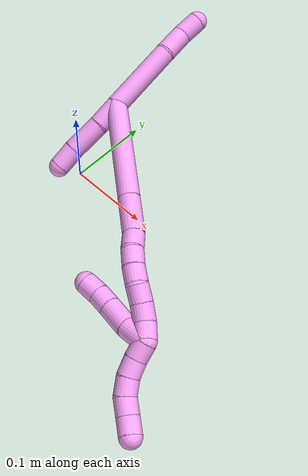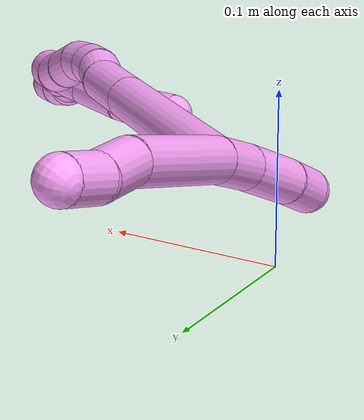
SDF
<sdf version="1.7">
 <world name="default">
  <model name="photoneo_s_sensor">
   <static>1</static>
   <pose>0 0 2 1.57079 1.57079 3.14159</pose>
   <link name="link">
    <inertial><mass>0.1</mass></inertial>
    <sensor name="sensor" type="depth">
     <update_rate>30</update_rate>
     <camera>
      <horizontal_fov>1.22</horizontal_fov>
      <image><width>1920</width><height>1200</height><format>B8G8R8</format></image>
      <clip><near>0.1</near><far>4</far></clip>
      <depth_camera><output>points</output></depth_camera>
     </camera>
     <plugin name="camera_plugin" filename="libgazebo_ros_depth_camera.so">
      <baseline>0.2</baseline>
      <alwaysOn>1</alwaysOn>
      <updateRate>0.0</updateRate>
      <cameraName>camera_ir</cameraName>
      <imageTopicName>/camera/color/image_raw</imageTopicName>
      <cameraInfoTopicName>/camera/color/camera_info</cameraInfoTopicName>
      <depthImageTopicName>/camera/depth/image_raw</depthImageTopicName>
      <depthImageCameraInfoTopicName>/camera/depth/camera_info</depthImageCameraInfoTopicName>
      <pointCloudTopicName>/camera/depth/points</pointCloudTopicName>
      <frameName>fr_optical</frameName>
      <pointCloudCutoff>0.1</pointCloudCutoff>
      <pointCloudCutoffMax>2.0</pointCloudCutoffMax>
      <distortionK1>0</distortionK1>
      <distortionK2>0</distortionK2>
      <distortionK3>0</distortionK3>
      <distortionT1>0</distortionT1>
      <distortionT2>0</distortionT2>
      <CxPrime>0</CxPrime>
      <Cx>0</Cx>
      <Cy>0</Cy>
      <focalLength>0</focalLength>
      <hackBaseline>0</hackBaseline>
     </plugin>
    </sensor>
   </link>
  </model>
  <model name="bin">
   <static>1</static>
   <link name="bottom">
    <collision name="collision-bottom">
     <pose>0 0 -0.01 0 -0 0</pose>
     <geometry><box><size>0.8 0.6 0.02</size></box></geometry>
     <surface>
      <friction><ode><mu>100</mu><mu2>100</mu2></ode></friction>
      <contact><collide_bitmask>65535</collide_bitmask></contact>
     </surface>
    </collision>
   </link>
   <link name="west_wall">
    <collision name="collision-west_wall">
     <pose>-0.41 0 0.1 0 -0 0</pose>
     <geometry><box><size>0.02 0.6 0.2</size></box></geometry>
     <surface>
      <friction><ode><mu>100</mu><mu2>100</mu2></ode></friction>
      <contact><collide_bitmask>65535</collide_bitmask></contact>
     </surface>
    </collision>
   </link>
   <link name="east_wall">
    <collision name="collision-east_wall">
     <pose>0.41 0 0.1 0 -0 0</pose>
     <geometry><box><size>0.02 0.6 0.2</size></box></geometry>
     <surface>
      <friction><ode><mu>100</mu><mu2>100</mu2></ode></friction>
      <contact><collide_bitmask>65535</collide_bitmask></contact>
     </surface>
    </collision>
   </link>
   <link name="south_wall">
    <collision name="collision-south_wall">
     <pose>0 -0.31 0.1 0 -0 0</pose>
     <geometry><box><size>0.8 0.02 0.2</size></box></geometry>
     <surface>
      <friction><ode><mu>100</mu><mu2>100</mu2></ode></friction>
      <contact><collide_bitmask>65535</collide_bitmask></contact>
     </surface>
    </collision>
   </link>
   <link name="north_wall">
    <collision name="collision-north_wall">
     <pose>0 0.31 0.1 0 -0 0</pose>
     <geometry><box><size>0.8 0.02 0.2</size></box></geometry>
     <surface>
      <friction><ode><mu>100</mu><mu2>100</mu2></ode></friction>
      <contact><collide_bitmask>65535</collide_bitmask></contact>
     </surface>
    </collision>
   </link>
  </model>
  <model name="4">
   <static>0</static>
   <link name="4">
    <collision name="collision-cylinder-e_1_2_8">
     <pose>-0.020499 0.037906 -0.011742 -1.87118 -0.476821 0.636967</pose>
     <geometry><cylinder><radius>0.0125</radius><length>0.08933</length></cylinder></geometry>
     <surface>
      <friction><ode><mu>1.16</mu><mu2>1.16</mu2><slip1>0</slip1><slip2>0</slip2></ode></friction>
      <contact><ode><kp>1e+06</kp><kd>1</kd><max_vel>0</max_vel><min_depth>0.001</min_depth></ode></contact>
     </surface>
    </collision>
    <visual name="visual-cylinder-e_1_2_8">
     <pose>-0.020499 0.037906 -0.011742 -1.87118 -0.476821 0.636967</pose>
     <geometry><cylinder><radius>0.0125</radius><length>0.08933</length></cylinder></geometry>
     <material><ambient>1 0.65098 0.996078 1</ambient></material>
    </visual>
    <collision name="collision-cylinder-e_2_8_9">
     <pose>-0.046025 0.090691 -0.030092 -1.98879 -0.299443 0.456055</pose>
     <geometry><cylinder><radius>0.0125</radius><length>0.034077</length></cylinder></geometry>
     <surface>
      <friction><ode><mu>1.16</mu><mu2>1.16</mu2><slip1>0</slip1><slip2>0</slip2></ode></friction>
      <contact><ode><kp>1e+06</kp><kd>1</kd><max_vel>0</max_vel><min_depth>0.001</min_depth></ode></contact>
     </surface>
    </collision>
    <visual name="visual-cylinder-e_2_8_9">
     <pose>-0.046025 0.090691 -0.030092 -1.98879 -0.299443 0.456055</pose>
     <geometry><cylinder><radius>0.0125</radius><length>0.034077</length></cylinder></geometry>
     <material><ambient>1 0.65098 0.996078 1</ambient></material>
    </visual>
    <collision name="collision-cylinder-e_3_9_6">
     <pose>-0.056631 0.117397 -0.039105 -1.77133 -0.43305 0.525904</pose>
     <geometry><cylinder><radius>0.0125</radius><length>0.026593</length></cylinder></geometry>
     <surface>
      <friction><ode><mu>1.16</mu><mu2>1.16</mu2><slip1>0</slip1><slip2>0</slip2></ode></friction>
      <contact><ode><kp>1e+06</kp><kd>1</kd><max_vel>0</max_vel><min_depth>0.001</min_depth></ode></contact>
     </surface>
    </collision>
    <visual name="visual-cylinder-e_3_9_6">
     <pose>-0.056631 0.117397 -0.039105 -1.77133 -0.43305 0.525904</pose>
     <geometry><cylinder><radius>0.0125</radius><length>0.026593</length></cylinder></geometry>
     <material><ambient>1 0.65098 0.996078 1</ambient></material>
    </visual>
    <collision name="collision-cylinder-e_1_2_10">
     <pose>0.008826 -0.012986 0.002912 1.35018 0.585618 0.473648</pose>
     <geometry><cylinder><radius>0.0125</radius><length>0.031938</length></cylinder></geometry>
     <surface>
      <friction><ode><mu>1.16</mu><mu2>1.16</mu2><slip1>0</slip1><slip2>0</slip2></ode></friction>
      <contact><ode><kp>1e+06</kp><kd>1</kd><max_vel>0</max_vel><min_depth>0.001</min_depth></ode></contact>
     </surface>
    </collision>
    <visual name="visual-cylinder-e_1_2_10">
     <pose>0.008826 -0.012986 0.002912 1.35018 0.585618 0.473648</pose>
     <geometry><cylinder><radius>0.0125</radius><length>0.031938</length></cylinder></geometry>
     <material><ambient>1 0.65098 0.996078 1</ambient></material>
    </visual>
    <collision name="collision-cylinder-e_2_10_11">
     <pose>0.029847 -0.042743 0.007162 1.49121 0.627152 0.581892</pose>
     <geometry><cylinder><radius>0.0125</radius><length>0.041559</length></cylinder></geometry>
     <surface>
      <friction><ode><mu>1.16</mu><mu2>1.16</mu2><slip1>0</slip1><slip2>0</slip2></ode></friction>
      <contact><ode><kp>1e+06</kp><kd>1</kd><max_vel>0</max_vel><min_depth>0.001</min_depth></ode></contact>
     </surface>
    </collision>
    <visual name="visual-cylinder-e_2_10_11">
     <pose>0.029847 -0.042743 0.007162 1.49121 0.627152 0.581892</pose>
     <geometry><cylinder><radius>0.0125</radius><length>0.041559</length></cylinder></geometry>
     <material><ambient>1 0.65098 0.996078 1</ambient></material>
    </visual>
    <collision name="collision-cylinder-e_3_11_5">
     <pose>0.050286 -0.069702 0.010458 1.38086 0.671523 0.561329</pose>
     <geometry><cylinder><radius>0.0125</radius><length>0.026504</length></cylinder></geometry>
     <surface>
      <friction><ode><mu>1.16</mu><mu2>1.16</mu2><slip1>0</slip1><slip2>0</slip2></ode></friction>
      <contact><ode><kp>1e+06</kp><kd>1</kd><max_vel>0</max_vel><min_depth>0.001</min_depth></ode></contact>
     </surface>
    </collision>
    <visual name="visual-cylinder-e_3_11_5">
     <pose>0.050286 -0.069702 0.010458 1.38086 0.671523 0.561329</pose>
     <geometry><cylinder><radius>0.0125</radius><length>0.026504</length></cylinder></geometry>
     <material><ambient>1 0.65098 0.996078 1</ambient></material>
    </visual>
    <collision name="collision-cylinder-e_1_2_12">
     <pose>0.016398 -0.022793 0.060733 0.359029 0.247596 0.045154</pose>
     <geometry><cylinder><radius>0.0125</radius><length>0.13382</length></cylinder></geometry>
     <surface>
      <friction><ode><mu>1.16</mu><mu2>1.16</mu2><slip1>0</slip1><slip2>0</slip2></ode></friction>
      <contact><ode><kp>1e+06</kp><kd>1</kd><max_vel>0</max_vel><min_depth>0.001</min_depth></ode></contact>
     </surface>
    </collision>
    <visual name="visual-cylinder-e_1_2_12">
     <pose>0.016398 -0.022793 0.060733 0.359029 0.247596 0.045154</pose>
     <geometry><cylinder><radius>0.0125</radius><length>0.13382</length></cylinder></geometry>
     <material><ambient>1 0.65098 0.996078 1</ambient></material>
    </visual>
    <collision name="collision-cylinder-e_2_12_13">
     <pose>0.038422 -0.053469 0.142309 0.361596 0.247325 0.045434</pose>
     <geometry><cylinder><radius>0.0125</radius><length>0.045964</length></cylinder></geometry>
     <surface>
      <friction><ode><mu>1.16</mu><mu2>1.16</mu2><slip1>0</slip1><slip2>0</slip2></ode></friction>
      <contact><ode><kp>1e+06</kp><kd>1</kd><max_vel>0</max_vel><min_depth>0.001</min_depth></ode></contact>
     </surface>
    </collision>
    <visual name="visual-cylinder-e_2_12_13">
     <pose>0.038422 -0.053469 0.142309 0.361596 0.247325 0.045434</pose>
     <geometry><cylinder><radius>0.0125</radius><length>0.045964</length></cylinder></geometry>
     <material><ambient>1 0.65098 0.996078 1</ambient></material>
    </visual>
    <collision name="collision-cylinder-e_3_13_14">
     <pose>0.045467 -0.066636 0.171527 0.562791 0.142323 0.041205</pose>
     <geometry><cylinder><radius>0.0125</radius><length>0.02001</length></cylinder></geometry>
     <surface>
      <friction><ode><mu>1.16</mu><mu2>1.16</mu2><slip1>0</slip1><slip2>0</slip2></ode></friction>
      <contact><ode><kp>1e+06</kp><kd>1</kd><max_vel>0</max_vel><min_depth>0.001</min_depth></ode></contact>
     </surface>
    </collision>
    <visual name="visual-cylinder-e_3_13_14">
     <pose>0.045467 -0.066636 0.171527 0.562791 0.142323 0.041205</pose>
     <geometry><cylinder><radius>0.0125</radius><length>0.02001</length></cylinder></geometry>
     <material><ambient>1 0.65098 0.996078 1</ambient></material>
    </visual>
    <collision name="collision-cylinder-e_4_14_15">
     <pose>0.050069 -0.075657 0.188626 0.404797 0.323582 0.066962</pose>
     <geometry><cylinder><radius>0.0125</radius><length>0.020017</length></cylinder></geometry>
     <surface>
      <friction><ode><mu>1.16</mu><mu2>1.16</mu2><slip1>0</slip1><slip2>0</slip2></ode></friction>
      <contact><ode><kp>1e+06</kp><kd>1</kd><max_vel>0</max_vel><min_depth>0.001</min_depth></ode></contact>
     </surface>
    </collision>
    <visual name="visual-cylinder-e_4_14_15">
     <pose>0.050069 -0.075657 0.188626 0.404797 0.323582 0.066962</pose>
     <geometry><cylinder><radius>0.0125</radius><length>0.020017</length></cylinder></geometry>
     <material><ambient>1 0.65098 0.996078 1</ambient></material>
    </visual>
    <collision name="collision-cylinder-e_5_15_16">
     <pose>0.05673 -0.082019 0.206426 0.281416 0.352735 0.050477</pose>
     <geometry><cylinder><radius>0.0125</radius><length>0.02014</length></cylinder></geometry>
     <surface>
      <friction><ode><mu>1.16</mu><mu2>1.16</mu2><slip1>0</slip1><slip2>0</slip2></ode></friction>
      <contact><ode><kp>1e+06</kp><kd>1</kd><max_vel>0</max_vel><min_depth>0.001</min_depth></ode></contact>
     </surface>
    </collision>
    <visual name="visual-cylinder-e_5_15_16">
     <pose>0.05673 -0.082019 0.206426 0.281416 0.352735 0.050477</pose>
     <geometry><cylinder><radius>0.0125</radius><length>0.02014</length></cylinder></geometry>
     <material><ambient>1 0.65098 0.996078 1</ambient></material>
    </visual>
    <collision name="collision-cylinder-e_6_16_17">
     <pose>0.066288 -0.085665 0.223381 0.128949 0.653283 0.043738</pose>
     <geometry><cylinder><radius>0.0125</radius><length>0.020004</length></cylinder></geometry>
     <surface>
      <friction><ode><mu>1.16</mu><mu2>1.16</mu2><slip1>0</slip1><slip2>0</slip2></ode></friction>
      <contact><ode><kp>1e+06</kp><kd>1</kd><max_vel>0</max_vel><min_depth>0.001</min_depth></ode></contact>
     </surface>
    </collision>
    <visual name="visual-cylinder-e_6_16_17">
     <pose>0.066288 -0.085665 0.223381 0.128949 0.653283 0.043738</pose>
     <geometry><cylinder><radius>0.0125</radius><length>0.020004</length></cylinder></geometry>
     <material><ambient>1 0.65098 0.996078 1</ambient></material>
    </visual>
    <collision name="collision-cylinder-e_7_17_18">
     <pose>0.078029 -0.088739 0.239267 0.250955 0.600379 0.078052</pose>
     <geometry><cylinder><radius>0.0125</radius><length>0.020042</length></cylinder></geometry>
     <surface>
      <friction><ode><mu>1.16</mu><mu2>1.16</mu2><slip1>0</slip1><slip2>0</slip2></ode></friction>
      <contact><ode><kp>1e+06</kp><kd>1</kd><max_vel>0</max_vel><min_depth>0.001</min_depth></ode></contact>
     </surface>
    </collision>
    <visual name="visual-cylinder-e_7_17_18">
     <pose>0.078029 -0.088739 0.239267 0.250955 0.600379 0.078052</pose>
     <geometry><cylinder><radius>0.0125</radius><length>0.020042</length></cylinder></geometry>
     <material><ambient>1 0.65098 0.996078 1</ambient></material>
    </visual>
    <collision name="collision-cylinder-e_8_18_1">
     <pose>0.087209 -0.094802 0.255736 0.442611 0.35949 0.081719</pose>
     <geometry><cylinder><radius>0.0125</radius><length>0.020002</length></cylinder></geometry>
     <surface>
      <friction><ode><mu>1.16</mu><mu2>1.16</mu2><slip1>0</slip1><slip2>0</slip2></ode></friction>
      <contact><ode><kp>1e+06</kp><kd>1</kd><max_vel>0</max_vel><min_depth>0.001</min_depth></ode></contact>
     </surface>
    </collision>
    <visual name="visual-cylinder-e_8_18_1">
     <pose>0.087209 -0.094802 0.255736 0.442611 0.35949 0.081719</pose>
     <geometry><cylinder><radius>0.0125</radius><length>0.020002</length></cylinder></geometry>
     <material><ambient>1 0.65098 0.996078 1</ambient></material>
    </visual>
    <collision name="collision-cylinder-e_1_1_19">
     <pose>0.092389 -0.102125 0.250646 2.90179 0.118574 0.915545</pose>
     <geometry><cylinder><radius>0.0125</radius><length>0.028097</length></cylinder></geometry>
     <surface>
      <friction><ode><mu>1.16</mu><mu2>1.16</mu2><slip1>0</slip1><slip2>0</slip2></ode></friction>
      <contact><ode><kp>1e+06</kp><kd>1</kd><max_vel>0</max_vel><min_depth>0.001</min_depth></ode></contact>
     </surface>
    </collision>
    <visual name="visual-cylinder-e_1_1_19">
     <pose>0.092389 -0.102125 0.250646 2.90179 0.118574 0.915545</pose>
     <geometry><cylinder><radius>0.0125</radius><length>0.028097</length></cylinder></geometry>
     <material><ambient>1 0.65098 0.996078 1</ambient></material>
    </visual>
    <collision name="collision-cylinder-e_2_19_20">
     <pose>0.094143 -0.107276 0.22129 3.02585 0.005801 0.100045</pose>
     <geometry><cylinder><radius>0.0125</radius><length>0.031823</length></cylinder></geometry>
     <surface>
      <friction><ode><mu>1.16</mu><mu2>1.16</mu2><slip1>0</slip1><slip2>0</slip2></ode></friction>
      <contact><ode><kp>1e+06</kp><kd>1</kd><max_vel>0</max_vel><min_depth>0.001</min_depth></ode></contact>
     </surface>
    </collision>
    <visual name="visual-cylinder-e_2_19_20">
     <pose>0.094143 -0.107276 0.22129 3.02585 0.005801 0.100045</pose>
     <geometry><cylinder><radius>0.0125</radius><length>0.031823</length></cylinder></geometry>
     <material><ambient>1 0.65098 0.996078 1</ambient></material>
    </visual>
    <collision name="collision-cylinder-e_3_20_21">
     <pose>0.093535 -0.110826 0.195654 2.96915 -0.070056 -0.770343</pose>
     <geometry><cylinder><radius>0.0125</radius><length>0.02001</length></cylinder></geometry>
     <surface>
      <friction><ode><mu>1.16</mu><mu2>1.16</mu2><slip1>0</slip1><slip2>0</slip2></ode></friction>
      <contact><ode><kp>1e+06</kp><kd>1</kd><max_vel>0</max_vel><min_depth>0.001</min_depth></ode></contact>
     </surface>
    </collision>
    <visual name="visual-cylinder-e_3_20_21">
     <pose>0.093535 -0.110826 0.195654 2.96915 -0.070056 -0.770343</pose>
     <geometry><cylinder><radius>0.0125</radius><length>0.02001</length></cylinder></geometry>
     <material><ambient>1 0.65098 0.996078 1</ambient></material>
    </visual>
    <collision name="collision-cylinder-e_4_21_4">
     <pose>0.09201 -0.115488 0.176265 2.84221 -0.082306 -0.533048</pose>
     <geometry><cylinder><radius>0.0125</radius><length>0.020071</length></cylinder></geometry>
     <surface>
      <friction><ode><mu>1.16</mu><mu2>1.16</mu2><slip1>0</slip1><slip2>0</slip2></ode></friction>
      <contact><ode><kp>1e+06</kp><kd>1</kd><max_vel>0</max_vel><min_depth>0.001</min_depth></ode></contact>
     </surface>
    </collision>
    <visual name="visual-cylinder-e_4_21_4">
     <pose>0.09201 -0.115488 0.176265 2.84221 -0.082306 -0.533048</pose>
     <geometry><cylinder><radius>0.0125</radius><length>0.020071</length></cylinder></geometry>
     <material><ambient>1 0.65098 0.996078 1</ambient></material>
    </visual>
    <collision name="collision-cylinder-e_1_1_22">
     <pose>0.097758 -0.105354 0.266982 1.16826 0.779793 0.530521</pose>
     <geometry><cylinder><radius>0.0125</radius><length>0.02</length></cylinder></geometry>
     <surface>
      <friction><ode><mu>1.16</mu><mu2>1.16</mu2><slip1>0</slip1><slip2>0</slip2></ode></friction>
      <contact><ode><kp>1e+06</kp><kd>1</kd><max_vel>0</max_vel><min_depth>0.001</min_depth></ode></contact>
     </surface>
    </collision>
    <visual name="visual-cylinder-e_1_1_22">
     <pose>0.097758 -0.105354 0.266982 1.16826 0.779793 0.530521</pose>
     <geometry><cylinder><radius>0.0125</radius><length>0.02</length></cylinder></geometry>
     <material><ambient>1 0.65098 0.996078 1</ambient></material>
    </visual>
    <collision name="collision-cylinder-e_2_22_23">
     <pose>0.11113 -0.118238 0.274193 0.961493 0.686704 0.368694</pose>
     <geometry><cylinder><radius>0.0125</radius><length>0.02</length></cylinder></geometry>
     <surface>
      <friction><ode><mu>1.16</mu><mu2>1.16</mu2><slip1>0</slip1><slip2>0</slip2></ode></friction>
      <contact><ode><kp>1e+06</kp><kd>1</kd><max_vel>0</max_vel><min_depth>0.001</min_depth></ode></contact>
     </surface>
    </collision>
    <visual name="visual-cylinder-e_2_22_23">
     <pose>0.11113 -0.118238 0.274193 0.961493 0.686704 0.368694</pose>
     <geometry><cylinder><radius>0.0125</radius><length>0.02</length></cylinder></geometry>
     <material><ambient>1 0.65098 0.996078 1</ambient></material>
    </visual>
    <collision name="collision-cylinder-e_3_23_24">
     <pose>0.123279 -0.129431 0.285155 0.638493 0.619886 0.210943</pose>
     <geometry><cylinder><radius>0.0125</radius><length>0.02</length></cylinder></geometry>
     <surface>
      <friction><ode><mu>1.16</mu><mu2>1.16</mu2><slip1>0</slip1><slip2>0</slip2></ode></friction>
      <contact><ode><kp>1e+06</kp><kd>1</kd><max_vel>0</max_vel><min_depth>0.001</min_depth></ode></contact>
     </surface>
    </collision>
    <visual name="visual-cylinder-e_3_23_24">
     <pose>0.123279 -0.129431 0.285155 0.638493 0.619886 0.210943</pose>
     <geometry><cylinder><radius>0.0125</radius><length>0.02</length></cylinder></geometry>
     <material><ambient>1 0.65098 0.996078 1</ambient></material>
    </visual>
    <collision name="collision-cylinder-e_4_24_25">
     <pose>0.13356 -0.136857 0.300257 0.292065 0.463566 0.069401</pose>
     <geometry><cylinder><radius>0.0125</radius><length>0.02</length></cylinder></geometry>
     <surface>
      <friction><ode><mu>1.16</mu><mu2>1.16</mu2><slip1>0</slip1><slip2>0</slip2></ode></friction>
      <contact><ode><kp>1e+06</kp><kd>1</kd><max_vel>0</max_vel><min_depth>0.001</min_depth></ode></contact>
     </surface>
    </collision>
    <visual name="visual-cylinder-e_4_24_25">
     <pose>0.13356 -0.136857 0.300257 0.292065 0.463566 0.069401</pose>
     <geometry><cylinder><radius>0.0125</radius><length>0.02</length></cylinder></geometry>
     <material><ambient>1 0.65098 0.996078 1</ambient></material>
    </visual>
    <collision name="collision-cylinder-e_5_25_3">
     <pose>0.14123 -0.142472 0.317796 0.326611 0.325635 0.054122</pose>
     <geometry><cylinder><radius>0.0125</radius><length>0.02</length></cylinder></geometry>
     <surface>
      <friction><ode><mu>1.16</mu><mu2>1.16</mu2><slip1>0</slip1><slip2>0</slip2></ode></friction>
      <contact><ode><kp>1e+06</kp><kd>1</kd><max_vel>0</max_vel><min_depth>0.001</min_depth></ode></contact>
     </surface>
    </collision>
    <visual name="visual-cylinder-e_5_25_3">
     <pose>0.14123 -0.142472 0.317796 0.326611 0.325635 0.054122</pose>
     <geometry><cylinder><radius>0.0125</radius><length>0.02</length></cylinder></geometry>
     <material><ambient>1 0.65098 0.996078 1</ambient></material>
    </visual>
    <collision name="collision-sphere-3">
     <pose>0.144429 -0.145512 0.32677 0 -0 0</pose>
     <geometry><sphere><radius>0.0125</radius></sphere></geometry>
     <surface>
      <friction><ode><mu>1.16</mu><mu2>1.16</mu2><slip1>0</slip1><slip2>0</slip2></ode></friction>
      <contact><ode><kp>1e+06</kp><kd>1</kd><max_vel>0</max_vel><min_depth>0.001</min_depth></ode></contact>
     </surface>
    </collision>
    <visual name="visual-sphere-3">
     <pose>0.144429 -0.145512 0.32677 0 -0 0</pose>
     <geometry><sphere><radius>0.0125</radius></sphere></geometry>
     <material><ambient>1 0.65098 0.996078 1</ambient></material>
    </visual>
    <collision name="collision-sphere-25">
     <pose>0.138031 -0.139433 0.308823 0 -0 0</pose>
     <geometry><sphere><radius>0.0125</radius></sphere></geometry>
     <surface>
      <friction><ode><mu>1.16</mu><mu2>1.16</mu2><slip1>0</slip1><slip2>0</slip2></ode></friction>
      <contact><ode><kp>1e+06</kp><kd>1</kd><max_vel>0</max_vel><min_depth>0.001</min_depth></ode></contact>
     </surface>
    </collision>
    <visual name="visual-sphere-25">
     <pose>0.138031 -0.139433 0.308823 0 -0 0</pose>
     <geometry><sphere><radius>0.0125</radius></sphere></geometry>
     <material><ambient>1 0.65098 0.996078 1</ambient></material>
    </visual>
    <collision name="collision-sphere-24">
     <pose>0.129088 -0.134282 0.291691 0 -0 0</pose>
     <geometry><sphere><radius>0.0125</radius></sphere></geometry>
     <surface>
      <friction><ode><mu>1.16</mu><mu2>1.16</mu2><slip1>0</slip1><slip2>0</slip2></ode></friction>
      <contact><ode><kp>1e+06</kp><kd>1</kd><max_vel>0</max_vel><min_depth>0.001</min_depth></ode></contact>
     </surface>
    </collision>
    <visual name="visual-sphere-24">
     <pose>0.129088 -0.134282 0.291691 0 -0 0</pose>
     <geometry><sphere><radius>0.0125</radius></sphere></geometry>
     <material><ambient>1 0.65098 0.996078 1</ambient></material>
    </visual>
    <collision name="collision-sphere-23">
     <pose>0.117469 -0.12458 0.278619 0 -0 0</pose>
     <geometry><sphere><radius>0.0125</radius></sphere></geometry>
     <surface>
      <friction><ode><mu>1.16</mu><mu2>1.16</mu2><slip1>0</slip1><slip2>0</slip2></ode></friction>
      <contact><ode><kp>1e+06</kp><kd>1</kd><max_vel>0</max_vel><min_depth>0.001</min_depth></ode></contact>
     </surface>
    </collision>
    <visual name="visual-sphere-23">
     <pose>0.117469 -0.12458 0.278619 0 -0 0</pose>
     <geometry><sphere><radius>0.0125</radius></sphere></geometry>
     <material><ambient>1 0.65098 0.996078 1</ambient></material>
    </visual>
    <collision name="collision-sphere-22">
     <pose>0.10479 -0.111896 0.269767 0 -0 0</pose>
     <geometry><sphere><radius>0.0125</radius></sphere></geometry>
     <surface>
      <friction><ode><mu>1.16</mu><mu2>1.16</mu2><slip1>0</slip1><slip2>0</slip2></ode></friction>
      <contact><ode><kp>1e+06</kp><kd>1</kd><max_vel>0</max_vel><min_depth>0.001</min_depth></ode></contact>
     </surface>
    </collision>
    <visual name="visual-sphere-22">
     <pose>0.10479 -0.111896 0.269767 0 -0 0</pose>
     <geometry><sphere><radius>0.0125</radius></sphere></geometry>
     <material><ambient>1 0.65098 0.996078 1</ambient></material>
    </visual>
    <collision name="collision-sphere-4">
     <pose>0.091185 -0.118438 0.166708 0 -0 0</pose>
     <geometry><sphere><radius>0.0125</radius></sphere></geometry>
     <surface>
      <friction><ode><mu>1.16</mu><mu2>1.16</mu2><slip1>0</slip1><slip2>0</slip2></ode></friction>
      <contact><ode><kp>1e+06</kp><kd>1</kd><max_vel>0</max_vel><min_depth>0.001</min_depth></ode></contact>
     </surface>
    </collision>
    <visual name="visual-sphere-4">
     <pose>0.091185 -0.118438 0.166708 0 -0 0</pose>
     <geometry><sphere><radius>0.0125</radius></sphere></geometry>
     <material><ambient>1 0.65098 0.996078 1</ambient></material>
    </visual>
    <collision name="collision-sphere-21">
     <pose>0.092835 -0.112538 0.185821 0 -0 0</pose>
     <geometry><sphere><radius>0.0125</radius></sphere></geometry>
     <surface>
      <friction><ode><mu>1.16</mu><mu2>1.16</mu2><slip1>0</slip1><slip2>0</slip2></ode></friction>
      <contact><ode><kp>1e+06</kp><kd>1</kd><max_vel>0</max_vel><min_depth>0.001</min_depth></ode></contact>
     </surface>
    </collision>
    <visual name="visual-sphere-21">
     <pose>0.092835 -0.112538 0.185821 0 -0 0</pose>
     <geometry><sphere><radius>0.0125</radius></sphere></geometry>
     <material><ambient>1 0.65098 0.996078 1</ambient></material>
    </visual>
    <collision name="collision-sphere-20">
     <pose>0.094235 -0.109113 0.205486 0 -0 0</pose>
     <geometry><sphere><radius>0.0125</radius></sphere></geometry>
     <surface>
      <friction><ode><mu>1.16</mu><mu2>1.16</mu2><slip1>0</slip1><slip2>0</slip2></ode></friction>
      <contact><ode><kp>1e+06</kp><kd>1</kd><max_vel>0</max_vel><min_depth>0.001</min_depth></ode></contact>
     </surface>
    </collision>
    <visual name="visual-sphere-20">
     <pose>0.094235 -0.109113 0.205486 0 -0 0</pose>
     <geometry><sphere><radius>0.0125</radius></sphere></geometry>
     <material><ambient>1 0.65098 0.996078 1</ambient></material>
    </visual>
    <collision name="collision-sphere-11">
     <pose>0.042041 -0.059515 0.008499 0 -0 0</pose>
     <geometry><sphere><radius>0.0125</radius></sphere></geometry>
     <surface>
      <friction><ode><mu>1.16</mu><mu2>1.16</mu2><slip1>0</slip1><slip2>0</slip2></ode></friction>
      <contact><ode><kp>1e+06</kp><kd>1</kd><max_vel>0</max_vel><min_depth>0.001</min_depth></ode></contact>
     </surface>
    </collision>
    <visual name="visual-sphere-11">
     <pose>0.042041 -0.059515 0.008499 0 -0 0</pose>
     <geometry><sphere><radius>0.0125</radius></sphere></geometry>
     <material><ambient>1 0.65098 0.996078 1</ambient></material>
    </visual>
    <collision name="collision-sphere-10">
     <pose>0.017653 -0.025971 0.005824 0 -0 0</pose>
     <geometry><sphere><radius>0.0125</radius></sphere></geometry>
     <surface>
      <friction><ode><mu>1.16</mu><mu2>1.16</mu2><slip1>0</slip1><slip2>0</slip2></ode></friction>
      <contact><ode><kp>1e+06</kp><kd>1</kd><max_vel>0</max_vel><min_depth>0.001</min_depth></ode></contact>
     </surface>
    </collision>
    <visual name="visual-sphere-10">
     <pose>0.017653 -0.025971 0.005824 0 -0 0</pose>
     <geometry><sphere><radius>0.0125</radius></sphere></geometry>
     <material><ambient>1 0.65098 0.996078 1</ambient></material>
    </visual>
    <collision name="collision-sphere-6">
     <pose>-0.062211 0.129224 -0.041509 0 -0 0</pose>
     <geometry><sphere><radius>0.0125</radius></sphere></geometry>
     <surface>
      <friction><ode><mu>1.16</mu><mu2>1.16</mu2><slip1>0</slip1><slip2>0</slip2></ode></friction>
      <contact><ode><kp>1e+06</kp><kd>1</kd><max_vel>0</max_vel><min_depth>0.001</min_depth></ode></contact>
     </surface>
    </collision>
    <visual name="visual-sphere-6">
     <pose>-0.062211 0.129224 -0.041509 0 -0 0</pose>
     <geometry><sphere><radius>0.0125</radius></sphere></geometry>
     <material><ambient>1 0.65098 0.996078 1</ambient></material>
    </visual>
    <collision name="collision-sphere-9">
     <pose>-0.051051 0.105569 -0.036701 0 -0 0</pose>
     <geometry><sphere><radius>0.0125</radius></sphere></geometry>
     <surface>
      <friction><ode><mu>1.16</mu><mu2>1.16</mu2><slip1>0</slip1><slip2>0</slip2></ode></friction>
      <contact><ode><kp>1e+06</kp><kd>1</kd><max_vel>0</max_vel><min_depth>0.001</min_depth></ode></contact>
     </surface>
    </collision>
    <visual name="visual-sphere-9">
     <pose>-0.051051 0.105569 -0.036701 0 -0 0</pose>
     <geometry><sphere><radius>0.0125</radius></sphere></geometry>
     <material><ambient>1 0.65098 0.996078 1</ambient></material>
    </visual>
    <collision name="collision-sphere-2">
     <geometry><sphere><radius>0.0125</radius></sphere></geometry>
     <surface>
      <friction><ode><mu>1.16</mu><mu2>1.16</mu2><slip1>0</slip1><slip2>0</slip2></ode></friction>
      <contact><ode><kp>1e+06</kp><kd>1</kd><max_vel>0</max_vel><min_depth>0.001</min_depth></ode></contact>
     </surface>
    </collision>
    <visual name="visual-sphere-2">
     <geometry><sphere><radius>0.0125</radius></sphere></geometry>
     <material><ambient>1 0.65098 0.996078 1</ambient></material>
    </visual>
    <collision name="collision-sphere-19">
     <pose>0.094051 -0.105438 0.237095 0 -0 0</pose>
     <geometry><sphere><radius>0.0125</radius></sphere></geometry>
     <surface>
      <friction><ode><mu>1.16</mu><mu2>1.16</mu2><slip1>0</slip1><slip2>0</slip2></ode></friction>
      <contact><ode><kp>1e+06</kp><kd>1</kd><max_vel>0</max_vel><min_depth>0.001</min_depth></ode></contact>
     </surface>
    </collision>
    <visual name="visual-sphere-19">
     <pose>0.094051 -0.105438 0.237095 0 -0 0</pose>
     <geometry><sphere><radius>0.0125</radius></sphere></geometry>
     <material><ambient>1 0.65098 0.996078 1</ambient></material>
    </visual>
    <collision name="collision-sphere-8">
     <pose>-0.040999 0.075812 -0.023484 0 -0 0</pose>
     <geometry><sphere><radius>0.0125</radius></sphere></geometry>
     <surface>
      <friction><ode><mu>1.16</mu><mu2>1.16</mu2><slip1>0</slip1><slip2>0</slip2></ode></friction>
      <contact><ode><kp>1e+06</kp><kd>1</kd><max_vel>0</max_vel><min_depth>0.001</min_depth></ode></contact>
     </surface>
    </collision>
    <visual name="visual-sphere-8">
     <pose>-0.040999 0.075812 -0.023484 0 -0 0</pose>
     <geometry><sphere><radius>0.0125</radius></sphere></geometry>
     <material><ambient>1 0.65098 0.996078 1</ambient></material>
    </visual>
    <collision name="collision-sphere-5">
     <pose>0.058531 -0.07989 0.012417 0 -0 0</pose>
     <geometry><sphere><radius>0.0125</radius></sphere></geometry>
     <surface>
      <friction><ode><mu>1.16</mu><mu2>1.16</mu2><slip1>0</slip1><slip2>0</slip2></ode></friction>
      <contact><ode><kp>1e+06</kp><kd>1</kd><max_vel>0</max_vel><min_depth>0.001</min_depth></ode></contact>
     </surface>
    </collision>
    <visual name="visual-sphere-5">
     <pose>0.058531 -0.07989 0.012417 0 -0 0</pose>
     <geometry><sphere><radius>0.0125</radius></sphere></geometry>
     <material><ambient>1 0.65098 0.996078 1</ambient></material>
    </visual>
    <collision name="collision-sphere-12">
     <pose>0.032796 -0.045586 0.121467 0 -0 0</pose>
     <geometry><sphere><radius>0.0125</radius></sphere></geometry>
     <surface>
      <friction><ode><mu>1.16</mu><mu2>1.16</mu2><slip1>0</slip1><slip2>0</slip2></ode></friction>
      <contact><ode><kp>1e+06</kp><kd>1</kd><max_vel>0</max_vel><min_depth>0.001</min_depth></ode></contact>
     </surface>
    </collision>
    <visual name="visual-sphere-12">
     <pose>0.032796 -0.045586 0.121467 0 -0 0</pose>
     <geometry><sphere><radius>0.0125</radius></sphere></geometry>
     <material><ambient>1 0.65098 0.996078 1</ambient></material>
    </visual>
    <collision name="collision-sphere-13">
     <pose>0.044048 -0.061352 0.163151 0 -0 0</pose>
     <geometry><sphere><radius>0.0125</radius></sphere></geometry>
     <surface>
      <friction><ode><mu>1.16</mu><mu2>1.16</mu2><slip1>0</slip1><slip2>0</slip2></ode></friction>
      <contact><ode><kp>1e+06</kp><kd>1</kd><max_vel>0</max_vel><min_depth>0.001</min_depth></ode></contact>
     </surface>
    </collision>
    <visual name="visual-sphere-13">
     <pose>0.044048 -0.061352 0.163151 0 -0 0</pose>
     <geometry><sphere><radius>0.0125</radius></sphere></geometry>
     <material><ambient>1 0.65098 0.996078 1</ambient></material>
    </visual>
    <collision name="collision-sphere-14">
     <pose>0.046887 -0.07192 0.179903 0 -0 0</pose>
     <geometry><sphere><radius>0.0125</radius></sphere></geometry>
     <surface>
      <friction><ode><mu>1.16</mu><mu2>1.16</mu2><slip1>0</slip1><slip2>0</slip2></ode></friction>
      <contact><ode><kp>1e+06</kp><kd>1</kd><max_vel>0</max_vel><min_depth>0.001</min_depth></ode></contact>
     </surface>
    </collision>
    <visual name="visual-sphere-14">
     <pose>0.046887 -0.07192 0.179903 0 -0 0</pose>
     <geometry><sphere><radius>0.0125</radius></sphere></geometry>
     <material><ambient>1 0.65098 0.996078 1</ambient></material>
    </visual>
    <collision name="collision-sphere-15">
     <pose>0.053251 -0.079394 0.197348 0 -0 0</pose>
     <geometry><sphere><radius>0.0125</radius></sphere></geometry>
     <surface>
      <friction><ode><mu>1.16</mu><mu2>1.16</mu2><slip1>0</slip1><slip2>0</slip2></ode></friction>
      <contact><ode><kp>1e+06</kp><kd>1</kd><max_vel>0</max_vel><min_depth>0.001</min_depth></ode></contact>
     </surface>
    </collision>
    <visual name="visual-sphere-15">
     <pose>0.053251 -0.079394 0.197348 0 -0 0</pose>
     <geometry><sphere><radius>0.0125</radius></sphere></geometry>
     <material><ambient>1 0.65098 0.996078 1</ambient></material>
    </visual>
    <collision name="collision-sphere-16">
     <pose>0.060209 -0.084643 0.215505 0 -0 0</pose>
     <geometry><sphere><radius>0.0125</radius></sphere></geometry>
     <surface>
      <friction><ode><mu>1.16</mu><mu2>1.16</mu2><slip1>0</slip1><slip2>0</slip2></ode></friction>
      <contact><ode><kp>1e+06</kp><kd>1</kd><max_vel>0</max_vel><min_depth>0.001</min_depth></ode></contact>
     </surface>
    </collision>
    <visual name="visual-sphere-16">
     <pose>0.060209 -0.084643 0.215505 0 -0 0</pose>
     <geometry><sphere><radius>0.0125</radius></sphere></geometry>
     <material><ambient>1 0.65098 0.996078 1</ambient></material>
    </visual>
    <collision name="collision-sphere-17">
     <pose>0.072368 -0.086686 0.231258 0 -0 0</pose>
     <geometry><sphere><radius>0.0125</radius></sphere></geometry>
     <surface>
      <friction><ode><mu>1.16</mu><mu2>1.16</mu2><slip1>0</slip1><slip2>0</slip2></ode></friction>
      <contact><ode><kp>1e+06</kp><kd>1</kd><max_vel>0</max_vel><min_depth>0.001</min_depth></ode></contact>
     </surface>
    </collision>
    <visual name="visual-sphere-17">
     <pose>0.072368 -0.086686 0.231258 0 -0 0</pose>
     <geometry><sphere><radius>0.0125</radius></sphere></geometry>
     <material><ambient>1 0.65098 0.996078 1</ambient></material>
    </visual>
    <collision name="collision-sphere-18">
     <pose>0.08369 -0.090793 0.247277 0 -0 0</pose>
     <geometry><sphere><radius>0.0125</radius></sphere></geometry>
     <surface>
      <friction><ode><mu>1.16</mu><mu2>1.16</mu2><slip1>0</slip1><slip2>0</slip2></ode></friction>
      <contact><ode><kp>1e+06</kp><kd>1</kd><max_vel>0</max_vel><min_depth>0.001</min_depth></ode></contact>
     </surface>
    </collision>
    <visual name="visual-sphere-18">
     <pose>0.08369 -0.090793 0.247277 0 -0 0</pose>
     <geometry><sphere><radius>0.0125</radius></sphere></geometry>
     <material><ambient>1 0.65098 0.996078 1</ambient></material>
    </visual>
    <collision name="collision-sphere-1">
     <pose>0.090727 -0.098812 0.264196 0 -0 0</pose>
     <geometry><sphere><radius>0.0125</radius></sphere></geometry>
     <surface>
      <friction><ode><mu>1.16</mu><mu2>1.16</mu2><slip1>0</slip1><slip2>0</slip2></ode></friction>
      <contact><ode><kp>1e+06</kp><kd>1</kd><max_vel>0</max_vel><min_depth>0.001</min_depth></ode></contact>
     </surface>
    </collision>
    <visual name="visual-sphere-1">
     <pose>0.090727 -0.098812 0.264196 0 -0 0</pose>
     <geometry><sphere><radius>0.0125</radius></sphere></geometry>
     <material><ambient>1 0.65098 0.996078 1</ambient></material>
    </visual>
    <inertial>
     <pose>0.041397 -0.044402 0.117855 0 -0 0</pose>
     <mass>0.75</mass>
     <inertia><ixx>0.000356</ixx><ixy>0</ixy><ixz>0</ixz><iyy>0.00026</iyy><iyz>0</iyz><izz>1.1e-05</izz></inertia>
    </inertial>
   </link>
   <pose>0.003351 0.06222 0.079383 -0.788563 1.35438 -1.10096</pose>
  </model>
 </world>
</sdf>
